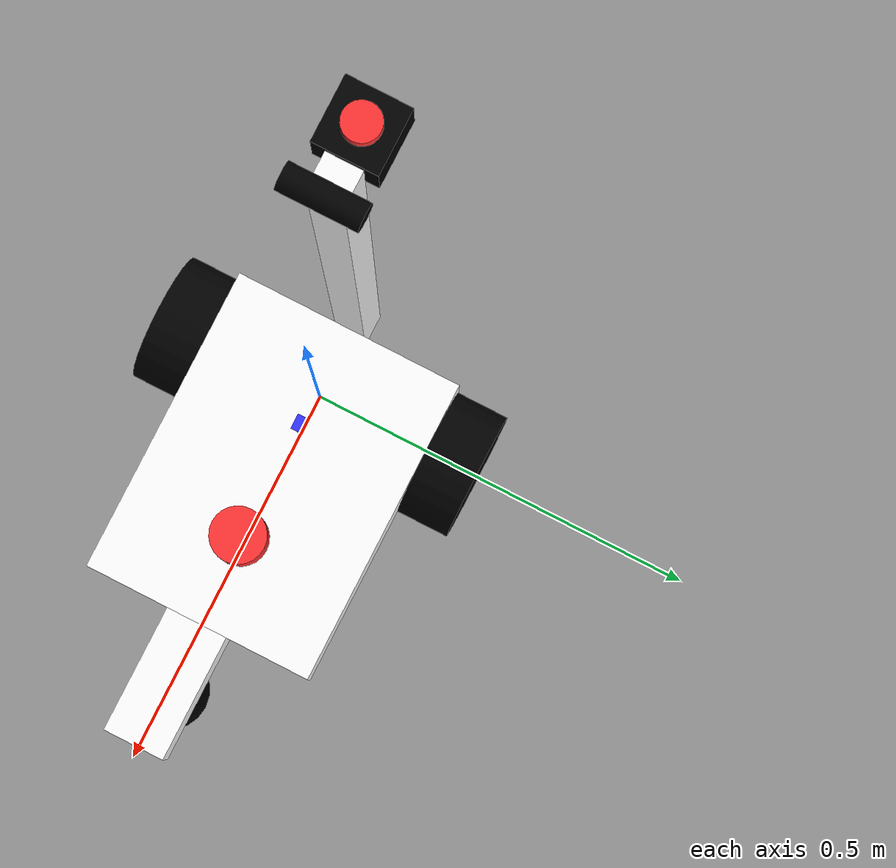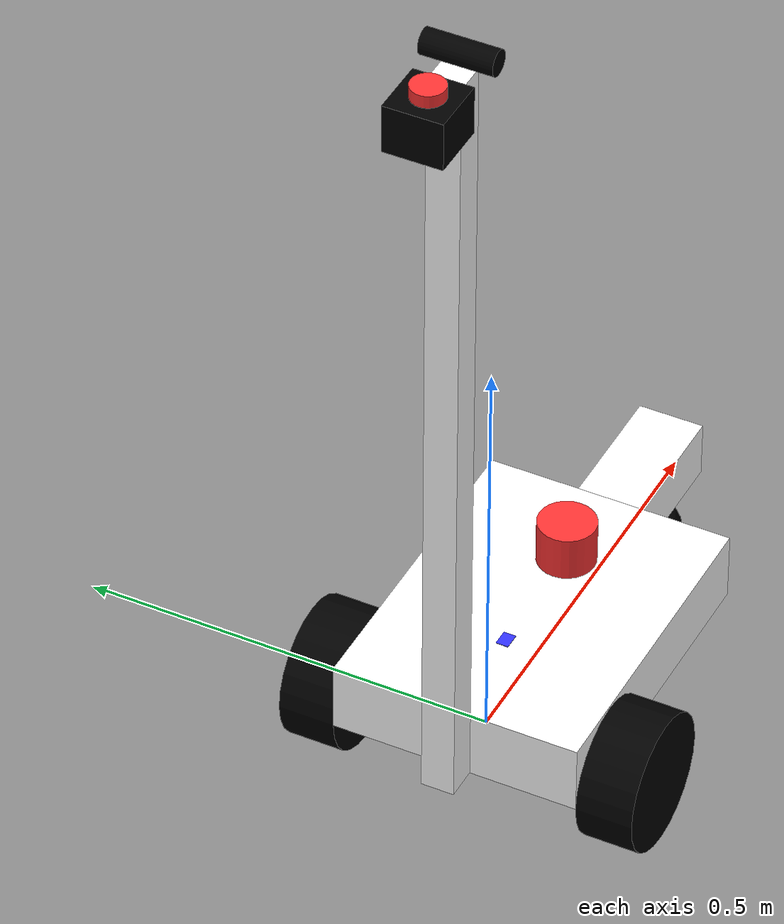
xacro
<?xml version="1.0"?>
<robot xmlns:xacro="http://www.ros.org/wiki/xacro"  name="robot">

    <xacro:include filename="robot_core.xacro" />

    <xacro:include filename="robot.gazebo" />

    <xacro:include filename="lidar.xacro" />

    <xacro:include filename="camera.xacro" />

    <xacro:include filename="accelerometer.xacro" />

</robot>

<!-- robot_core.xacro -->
<robot xmlns:xacro="http://www.ros.org/wiki/xacro" >

    <!-- Body Dimensions -->
    <xacro:property name="main_body_x_dim" value="0.4"/>
    <xacro:property name="main_body_y_dim" value="0.3"/>
    <xacro:property name="main_body_z_dim" value="0.085"/>

    <!-- Front Wheel Mount Dimensions -->
    <xacro:property name="front_wheel_mount_x_dim" value="0.165"/>
    <xacro:property name="front_wheel_mount_y_dim" value="0.08"/>
    <xacro:property name="front_wheel_mount_z_dim" value="0.07"/>

    <!-- Camera Mount Dimensions -->
    <xacro:property name="camera_mount_x_dim" value="0.04"/>
    <xacro:property name="camera_mount_y_dim" value="0.04"/>
    <xacro:property name="camera_mount_z_dim" value="0.975"/>

    <!-- Emergency Button Dimensions -->
    <xacro:property name="emergency_mount_x_dim" value="0.07"/>
    <xacro:property name="emergency_mount_y_dim" value="0.07"/>
    <xacro:property name="emergency_mount_z_dim" value="0.058"/>

    <xacro:property name="emergency_button_radius" value="0.02"/>
    <xacro:property name="emergency_button_length" value="0.03"/>

    <!-- Rear Wheel Dimensions -->
    <xacro:property name="wheel_link_radius" value="0.08255"/>
    <xacro:property name="wheel_link_length" value="0.068"/>
    <xacro:property name="wheel_link_z_location" value="0"/>

    <!-- Front Wheel Dimensions -->
    <xacro:property name="front_wheel_link_radius" value="${(wheel_link_radius+(main_body_z_dim-front_wheel_mount_z_dim))/2}"/>
    <xacro:property name="front_wheel_link_length" value="0.015"/>
    <xacro:property name="front_wheel_link_x_offset" value="0.075"/>
    <xacro:property name="front_wheel_link_x_location" value="${main_body_x_dim+front_wheel_mount_x_dim-front_wheel_link_x_offset}"/>

    <!-- Material Density -->
    <xacro:property name="body_density" value="2710.0"/>
    <xacro:property name="wheel_density" value="2710.0"/>
    <xacro:property name="front_wheel_density" value="2710.0"/>
    <xacro:property name="emergency_button_density" value="2710.0"/>

    <!-- Pi Constant -->
    <xacro:property name="pi_const" value="3.14159265"/>

    <!-- Masses -->
    <xacro:property name="main_body_mass" value="${body_density*main_body_x_dim*main_body_y_dim*main_body_z_dim*0.41}"/>
    <xacro:property name="wheel_mount_mass" value="${body_density*front_wheel_mount_x_dim*front_wheel_mount_y_dim*front_wheel_mount_z_dim*0.41}"/>
    <xacro:property name="camera_mount_mass" value="${body_density*camera_mount_x_dim*camera_mount_y_dim*camera_mount_z_dim}"/>
    <xacro:property name="emergency_mount_mass" value="${emergency_button_density*emergency_mount_x_dim*emergency_mount_y_dim*emergency_mount_z_dim}"/>
    <xacro:property name="emergency_button_mass" value="${emergency_button_density*pi_const*emergency_button_radius*emergency_button_radius*emergency_button_length}"/>

    <xacro:property name="wheel_mass" value="${wheel_density*pi_const*wheel_link_radius*wheel_link_radius*wheel_link_length}"/>
    <xacro:property name="front_wheel_mass" value="${front_wheel_density*pi_const*front_wheel_link_radius*front_wheel_link_radius*front_wheel_link_length}"/>

    <!-- Moments of Inertia of the Wheels -->
    <xacro:property name="Iz_wheel" value="${0.5*wheel_mass*wheel_link_radius*wheel_link_radius}"/>
    <xacro:property name="I_wheel" value="${(1.0/12.0)*wheel_mass*(3.0*wheel_link_radius*wheel_link_radius+wheel_link_length*wheel_link_length)}"/>

    <xacro:property name="Iz_front_wheel" value="${0.5*front_wheel_mass*front_wheel_link_radius*front_wheel_link_radius}"/>
    <xacro:property name="I_front_wheel" value="${(1.0/12.0)*front_wheel_mass*(3.0*front_wheel_link_radius*front_wheel_link_radius+front_wheel_link_length*front_wheel_link_length)}"/>

    <material name="black">
        <color rgba="0 0 0 1"/>
    </material>

    <material name="white">
        <color rgba="1 1 1 1"/>
    </material>

    <material name="red">
        <color rgba="1 0.2 0.2 1"/>
    </material>

    <material name="blue">
        <color rgba="0.2 0.2 1 1"/>
    </material>

    <xacro:macro name="inertia_wheel">
        <inertial>
            <origin rpy="0 0 0" xyz="0 0 0"/>
            <mass value="${wheel_mass}"/>
            <inertia ixx="${I_wheel}" ixy="0.0" ixz="0.0" iyy="${I_wheel}" iyz="0.0" izz="${Iz_wheel}" />
        </inertial>
    </xacro:macro>

    <xacro:macro name="inertia_front_wheel">
        <inertial>
            <origin rpy="0 0 0" xyz="0 0 0"/>
            <mass value="${front_wheel_mass}"/>
            <inertia ixx="${I_front_wheel}" ixy="0.0" ixz="0.0" iyy="${I_front_wheel}" iyz="0.0" izz="${Iz_front_wheel}" />
        </inertial>
    </xacro:macro>

    <!-- BASE LINK -->

    <link name="base_link">

    </link>

    <!-- CHASSIS LINK -->
    <joint name="chassis_joint" type="fixed">
        <parent link="base_link"/>front_
        <child link="chassis"/>front_
        <origin xyz="${-wheel_link_radius} 0 0"/>
    </joint>

    <link name="chassis">

        <visual>
            <origin xyz="${main_body_x_dim*0.5} 0 ${main_body_z_dim*0.5}"/>
            <geometry>
                <box size="${main_body_x_dim} ${main_body_y_dim} ${main_body_z_dim}"/>
            </geometry>
            <material name="white"/>
        </visual>

        <collision>
            <origin xyz="${main_body_x_dim*0.5} 0 ${main_body_z_dim*0.5}"/>
            <geometry>
                <box size="${main_body_x_dim} ${main_body_y_dim} ${main_body_z_dim}"/>
            </geometry>
        </collision>

        <inertial>
            <origin xyz="${main_body_x_dim*0.5} 0 ${main_body_z_dim*0.5}"/>
            <mass value="${main_body_mass}" />
            <inertia ixx="${(1/12)*main_body_mass*(main_body_y_dim*main_body_y_dim+main_body_z_dim*main_body_z_dim)}" ixy="0.0" ixz="0.0" iyy="${(1/12)*main_body_mass*(main_body_x_dim*main_body_x_dim+main_body_z_dim*main_body_z_dim)}"  iyz="0.0" izz="${(1/12)*main_body_mass*(main_body_y_dim*main_body_y_dim+main_body_x_dim*main_body_x_dim)}"  />
        </inertial>

    </link>

    <!-- CAMERA MOUNT LINK -->
    <joint name="camera_mount_joint" type="fixed">
        <parent link="chassis"/>front_
        <child link="camera_mount"/>front_
        <origin xyz="${-camera_mount_x_dim*0.5} 0 ${camera_mount_z_dim*0.5}"/>
    </joint>

    <link name="camera_mount">
        <visual>
            <geometry>
                <box size="${camera_mount_x_dim} ${camera_mount_y_dim} ${camera_mount_z_dim}"/>
            </geometry>
            <material name="white"/>
        </visual>

        <collision>
            <geometry>
                <box size="${camera_mount_x_dim} ${camera_mount_y_dim} ${camera_mount_z_dim}"/>
            </geometry>
        </collision>

        <inertial>
            <mass value="${camera_mount_mass}" />
            <inertia ixx="${(1/12)*camera_mount_mass*(camera_mount_y_dim*camera_mount_y_dim+camera_mount_z_dim*camera_mount_z_dim)}" ixy="0.0" ixz="0.0" iyy="${(1/12)*camera_mount_mass*(camera_mount_x_dim*camera_mount_x_dim+camera_mount_z_dim*camera_mount_z_dim)}"  iyz="0.0" izz="${(1/12)*camera_mount_mass*(camera_mount_y_dim*camera_mount_y_dim+camera_mount_x_dim*camera_mount_x_dim)}"  />
        </inertial>

    </link>

    <!-- EMERGENCY MOUNT LINK -->
    <joint name="emergency_mount_joint" type="fixed">
        <parent link="camera_mount"/>front_
        <child link="emergency_mount"/>front_
        <origin xyz="${-emergency_mount_x_dim+(emergency_mount_x_dim-camera_mount_x_dim)*0.5} 0 ${camera_mount_z_dim*0.5-0.02}"/>
    </joint>

    <link name="emergency_mount">
        <visual>
            <geometry>
                <box size="${emergency_mount_x_dim} ${emergency_mount_y_dim} ${emergency_mount_z_dim}"/>
            </geometry>
            <material name="black"/>
        </visual>

        <collision>
            <geometry>
                <box size="${emergency_mount_x_dim} ${emergency_mount_y_dim} ${emergency_mount_z_dim}"/>
            </geometry>
        </collision>

        <inertial>
            <mass value="${emergency_mount_mass}" />
            <inertia ixx="${(1/12)*emergency_mount_mass*(emergency_mount_y_dim*emergency_mount_y_dim+emergency_mount_z_dim*emergency_mount_z_dim)}" ixy="0.0" ixz="0.0" iyy="${(1/12)*emergency_mount_mass*(emergency_mount_x_dim*emergency_mount_x_dim+emergency_mount_z_dim*emergency_mount_z_dim)}"  iyz="0.0" izz="${(1/12)*emergency_mount_mass*(emergency_mount_y_dim*emergency_mount_y_dim+emergency_mount_x_dim*emergency_mount_x_dim)}"  />
        </inertial>

    </link>

    <!-- EMERGENCY BUTTON LINK -->
    <joint name="emergency_button_joint" type="fixed">
        <parent link="emergency_mount"/>front_
        <child link="emergency_button"/>front_
        <origin xyz="0 0 ${emergency_mount_z_dim*0.5}" />
    </joint>

    <link name="emergency_button">
        <visual>
            <geometry>
                <cylinder radius="${emergency_button_radius}" length="${emergency_button_length}"/>
            </geometry>
            <material name="red"/>
        </visual>

        <collision>
            <geometry>
                <cylinder radius="${emergency_button_radius}" length="${emergency_button_length}"/>
            </geometry>
        </collision>

        <inertial>
            <mass value="${emergency_button_mass}"/>
            <inertia ixx="${(1.0/12.0)*emergency_button_mass*(3.0*emergency_button_radius*emergency_button_radius+emergency_button_length*emergency_button_length)}" ixy="0.0" ixz="0.0" iyy="${(1.0/12.0)*emergency_button_mass*(3.0*emergency_button_radius*emergency_button_radius+emergency_button_length*emergency_button_length)}" iyz="0.0" izz="${0.5*emergency_button_mass*emergency_button_radius*emergency_button_radius}" />
        </inertial>

    </link>

    <!-- WHEEL MOUNT LINK -->
    <joint name="wheel_mount_joint" type="fixed">
        <parent link="chassis"/>front_
        <child link="wheel_mount"/>front_
        <origin xyz="0 0 0"/>
    </joint>

    <link name="wheel_mount">

        <visual>
            <origin xyz="${main_body_x_dim+front_wheel_mount_x_dim*0.5} 0 ${main_body_z_dim*0.5+(main_body_z_dim-front_wheel_mount_z_dim)*0.5}"/>
            <geometry>
                <box size="${front_wheel_mount_x_dim} ${front_wheel_mount_y_dim} ${front_wheel_mount_z_dim}"/>
            </geometry>
            <material name="white"/>
        </visual>

        <collision>
            <origin xyz="${main_body_x_dim+front_wheel_mount_x_dim*0.5} 0 ${main_body_z_dim*0.5+(main_body_z_dim-front_wheel_mount_z_dim)*0.5}"/>
            <geometry>
                <box size="${front_wheel_mount_x_dim} ${front_wheel_mount_y_dim} ${front_wheel_mount_z_dim}"/>
            </geometry>
        </collision>

        <inertial>
            <origin xyz="${main_body_x_dim+front_wheel_mount_x_dim*0.5} 0 ${main_body_z_dim*0.5+(main_body_z_dim-front_wheel_mount_z_dim)*0.5}"/>
            <mass value="${wheel_mount_mass}" />
            <inertia ixx="${(1/12)*wheel_mount_mass*(front_wheel_mount_y_dim*front_wheel_mount_y_dim+front_wheel_mount_z_dim*front_wheel_mount_z_dim)}" ixy="0.0" ixz="0.0" iyy="${(1/12)*wheel_mount_mass*(front_wheel_mount_x_dim*front_wheel_mount_x_dim+front_wheel_mount_z_dim*front_wheel_mount_z_dim)}"  iyz="0.0" izz="${(1/12)*wheel_mount_mass*(front_wheel_mount_y_dim*front_wheel_mount_y_dim+front_wheel_mount_x_dim*front_wheel_mount_x_dim)}"  />
        </inertial>

    </link>

    <!-- LEFT WHEEL LINK -->

    <joint name="left_wheel_joint" type="continuous">
        <parent link="base_link"/>
        <child link="left_wheel"/>
        <origin xyz="0 ${main_body_y_dim/2+wheel_link_length/2} ${wheel_link_z_location}" rpy="${-pi_const/2} 0 0" />
        <axis xyz="0 0 1"/>
        <limit effort="1000" velocity="1000" />
        <dynamics damping="1.0" friction="1.0"/>
    </joint>

    <link name="left_wheel">
        <visual>
            <geometry>
                <cylinder radius="${wheel_link_radius}" length="${wheel_link_length}"/>
            </geometry>
            <material name="black"/>
        </visual>
        <collision>
            <geometry>
                <cylinder radius="${wheel_link_radius}" length="${wheel_link_length}"/>
            </geometry>
        </collision>

        <xacro:inertia_wheel />
    </link>

    <!-- RIGHT WHEEL LINK -->

    <joint name="right_wheel_joint" type="continuous">
        <parent link="base_link"/>
        <child link="right_wheel"/>
        <origin xyz="0 ${-main_body_y_dim/2-wheel_link_length/2} ${wheel_link_z_location}" rpy="${pi_const/2} 0 0" />
        <axis xyz="0 0 -1"/>
        <limit effort="1000" velocity="1000" />
        <dynamics damping="1.0" friction="1.0"/>
    </joint>

    <link name="right_wheel">
        <visual>
            <geometry>
                <cylinder radius="${wheel_link_radius}" length="${wheel_link_length}"/>
            </geometry>
            <material name="black"/>
        </visual>
        <collision>
            <geometry>
                <cylinder radius="${wheel_link_radius}" length="${wheel_link_length}"/>
            </geometry>
        </collision>

        <xacro:inertia_wheel />
    </link>

    <!-- CASTER WHEEL LINK -->

    <joint name="caster_wheel_joint" type="fixed">
        <parent link="wheel_mount"/>
        <child link="caster_wheel"/>
        <origin xyz="${front_wheel_link_x_location} 0 ${(main_body_z_dim-front_wheel_mount_z_dim)-front_wheel_link_radius}"/>
    </joint>

    <link name="caster_wheel">
        <visual>
            <geometry>
                <sphere radius="${front_wheel_link_radius}"/>
            </geometry>
            <material name="black"/>
        </visual>
        <collision>
            <geometry>
                <sphere radius="${front_wheel_link_radius}"/>
            </geometry>
        </collision>
        <xacro:inertia_front_wheel />
    </link>

</robot>

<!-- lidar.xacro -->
<robot xmlns:xacro="http://www.ros.org/wiki/xacro" >

    <xacro:property name="lidar_radius" value="0.035"/>
    <xacro:property name="lidar_length" value="0.055"/>

    <xacro:property name="lidar_x_offset" value="0.28"/>
    <xacro:property name="lidar_x_location" value="${main_body_x_dim+front_wheel_mount_x_dim-lidar_x_offset}"/>

    <xacro:property name="lidar_density" value="2710.0"/>

    <xacro:property name="lidar_mass" value="${lidar_density*pi_const*lidar_radius*lidar_radius*lidar_length}"/>

    <!-- LIDAR LINK -->

	<joint name="lidar_joint" type="fixed">
        <parent link="base_link"/>
        <child link="lidar_frame"/>
        <origin xyz="${lidar_x_location-wheel_link_radius} 0 ${lidar_length*0.5+main_body_z_dim}" rpy="0 0 0"/>
    </joint>

    <link name="lidar_frame">
        <visual>
            <geometry>
                <cylinder radius="${lidar_radius}" length="${lidar_length}"/>
            </geometry>
            <material name="red"/>
        </visual>

        <collision>
            <geometry>
                <cylinder radius="${lidar_radius}" length="${lidar_length}"/>
            </geometry>
        </collision>

        <inertial>
            <mass value="${lidar_mass}"/>
            <inertia ixx="${(1.0/12.0)*lidar_mass*(3.0*lidar_radius*lidar_radius+lidar_length*lidar_length)}" ixy="0.0" ixz="0.0" iyy="${(1.0/12.0)*lidar_mass*(3.0*lidar_radius*lidar_radius+lidar_length*lidar_length)}" iyz="0.0" izz="${0.5*lidar_mass*lidar_radius*lidar_radius}" />
        </inertial>
    </link>

    <gazebo reference="lidar_frame">
        <material>Gazebo/Red</material>

        <sensor name="lidar" type="ray">
            <pose> 0 0 0 0 0 0 </pose>
            <visualize>true</visualize>
            <update_rate>10</update_rate>
            <ray>
                <scan>
                    <horizontal>
                        <samples>360</samples>
                        <min_angle>-3</min_angle>
                        <max_angle>3</max_angle>
                    </horizontal>
                </scan>
                <range>
                    <min>0.15</min>
                    <max>6.0</max>
                    <resolution>0.01500</resolution>
		        </range>
                <noise>
                    <type>gaussian</type>
                    <mean>0.0</mean>
                    <stddev>0.01</stddev>
                </noise>
            </ray>
            <plugin name="laser_controller" filename="libgazebo_ros_ray_sensor.so">
                <ros>
                    <argument>~/out:=scan</argument>
                </ros>
                <output_type>sensor_msgs/LaserScan</output_type>
                <frame_name>lidar_frame</frame_name>
            </plugin>
        </sensor>
    </gazebo>

</robot>

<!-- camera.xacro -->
<robot xmlns:xacro="http://www.ros.org/wiki/xacro" >

    <xacro:property name="camera_radius" value="0.015"/>
    <xacro:property name="camera_length" value="0.085"/>

    <xacro:property name="camera_x_offset" value="0.02"/>

    <xacro:property name="camera_density" value="2710.0"/>

    <xacro:property name="camera_mass" value="${camera_density*pi_const*camera_radius*camera_radius*camera_length}"/>

    <!-- CAMERA LINK -->

	<joint name="camera_joint" type="fixed">
        <parent link="camera_mount"/>
        <child link="camera_frame"/>
        <origin xyz="${camera_x_offset} 0 ${camera_mount_z_dim/2+camera_radius}" />
    </joint>

    <link name="camera_frame">
        <visual>
            <origin rpy="${pi_const/2} 0 0"/>
            <geometry>
                <cylinder radius="${camera_radius}" length="${camera_length}"/>
            </geometry>
            <material name="black"/>
        </visual>

        <collision>
            <origin rpy="${pi_const/2} 0 0"/>
            <geometry>
                <cylinder radius="${camera_radius}" length="${camera_length}"/>
            </geometry>
        </collision>

        <inertial>
            <origin rpy="${pi_const/2} 0 0"/>
            <mass value="${camera_mass}"/>
            <inertia ixx="${(1.0/12.0)*camera_mass*(3.0*camera_radius*camera_radius+camera_length*camera_length)}" ixy="0.0" ixz="0.0" iyy="${(1.0/12.0)*camera_mass*(3.0*camera_radius*camera_radius+camera_length*camera_length)}" iyz="0.0" izz="${0.5*camera_mass*camera_radius*camera_radius}" />
        </inertial>
    </link>

    <joint name="camera_optical_joint" type="fixed">
        <parent link="camera_frame"/>
        <child link="camera_optical_frame"/>
        <origin xyz="0 0 0" rpy="${-pi_const/2} 0 ${-pi_const/2}"/>
    </joint>

    <link name="camera_optical_frame"></link>

</robot>

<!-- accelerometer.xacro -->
<robot xmlns:xacro="http://www.ros.org/wiki/xacro" >

    <xacro:property name="acc_x_dim" value="0.02"/>
    <xacro:property name="acc_y_dim" value="0.015"/>
    <xacro:property name="acc_z_dim" value="0.001"/>

    <xacro:property name="acc_x_offset" value="0.13"/>

    <xacro:property name="acc_density" value="2710.0"/>

    <xacro:property name="acc_mass" value="${acc_density*acc_x_dim*acc_y_dim*acc_z_dim}"/>

    <!-- LIDAR LINK -->

	<joint name="acc_joint" type="fixed">
        <parent link="chassis"/>
        <child link="acc_frame"/>
        <origin xyz="${acc_x_offset} 0 ${acc_z_dim*0.5+main_body_z_dim}"/>
    </joint>

    <link name="acc_frame">
        <visual>
            <geometry>
                <box size="${acc_x_dim} ${acc_y_dim} ${acc_z_dim}"/>
            </geometry>
            <material name="blue"/>
        </visual>

        <collision>
            <geometry>
                <box size="${acc_x_dim} ${acc_y_dim} ${acc_z_dim}"/>
            </geometry>
        </collision>
    </link>

</robot>
